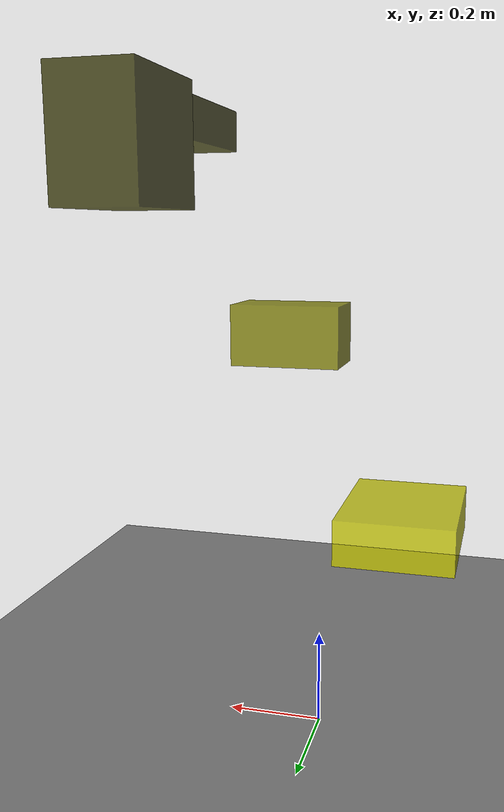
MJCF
<?xml version="1.0"?>
<mujoco model="obstacle_scene">
  <compiler angle="radian" coordinate="local"/>
  <option timestep="0.001" gravity="0 0 -9.81"/>

  <asset>
    <material name="obstacle_mat" rgba="0.8 0.8 0.0 0.8"/>
    <material name="ground_mat" rgba="0.5 0.5 0.5 1"/>
  </asset>

  <worldbody>
    <!-- Ground plane -->
    <geom name="ground" type="plane" size="3 3 0.1" material="ground_mat"/>

    <!-- Obstacles -->
    <body name="obstacle_0" pos="0.308281 0.223521 1.208262">
      <geom name="obs_0" type="box" size="0.082274 0.125671 0.118479" rgba="0.2 0.2 0.0 0.8"/>
    </body>
    <body name="obstacle_1" pos="0.162181 -0.383461 0.799495">
      <geom name="obs_1" type="box" size="0.133805 0.076383 0.074455" rgba="0.5 0.5 0.0 0.8"/>
    </body>
    <body name="obstacle_2" pos="-0.107748 -0.528090 0.277862">
      <geom name="obs_2" type="box" size="0.153313 0.192525 0.060126" rgba="0.8 0.8 0.0 0.8"/>
    </body>
    <body name="obstacle_3" pos="0.490198 -0.405646 1.305282">
      <geom name="obs_3" type="box" size="0.128295 0.166544 0.051298" rgba="0.2 0.2 0.0 0.8"/>
    </body>
  </worldbody>
</mujoco>
